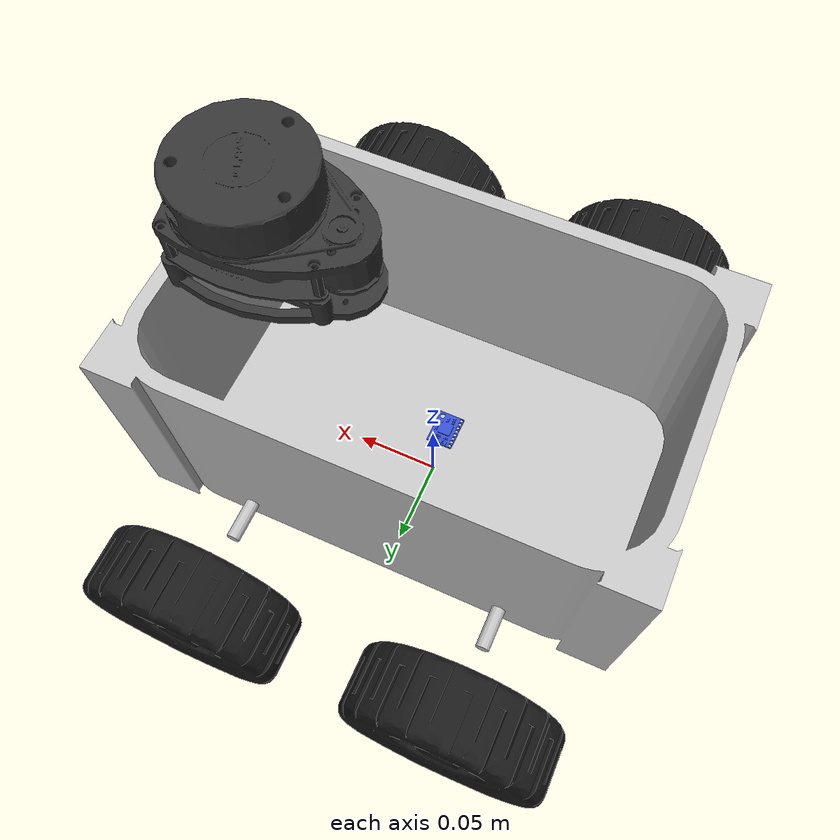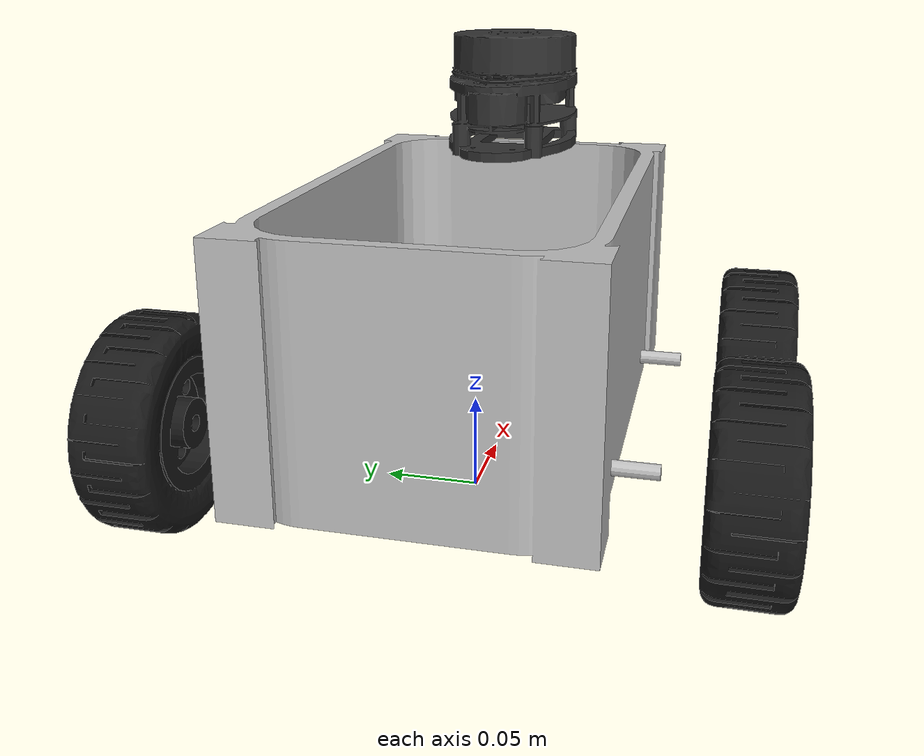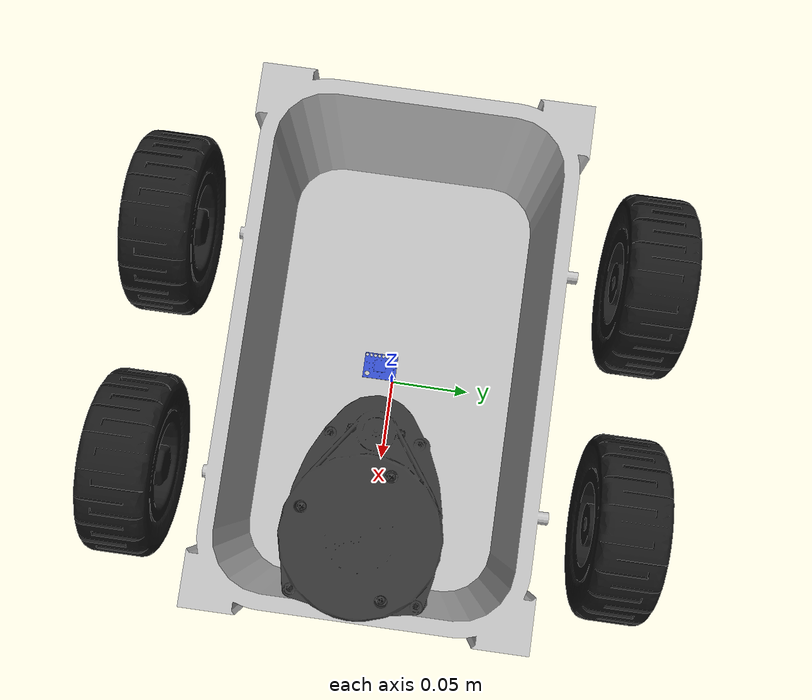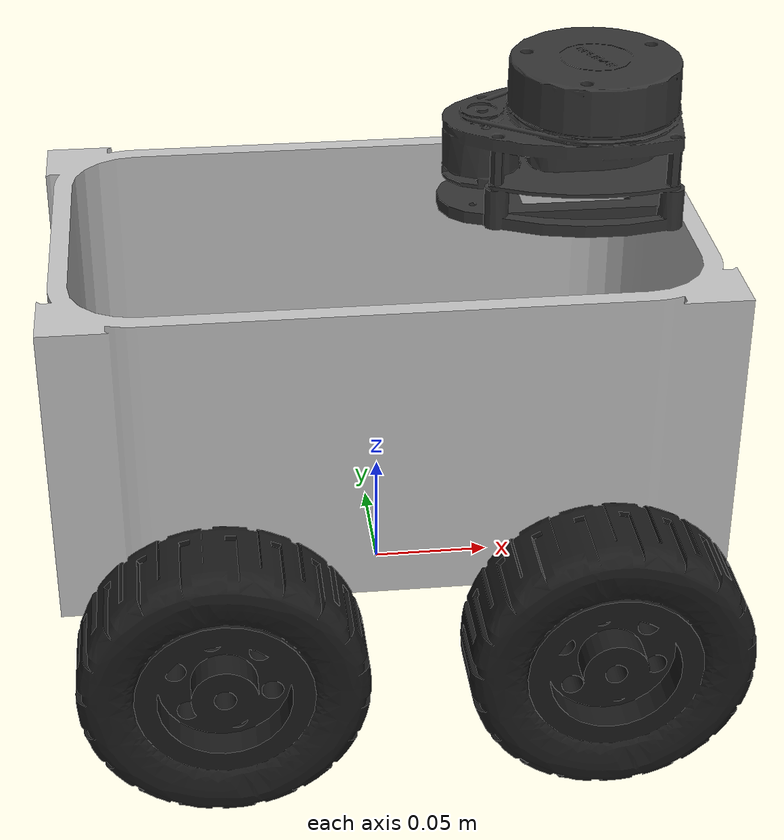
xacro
<?xml version="1.0"?>
<robot name="guide_dog_rover" xmlns:xacro="http://www.ros.org/wiki/xacro">

  <!-- Drivetrain                                                          -->
  <xacro:property name="wheel_radius"   value="0.055"/>   <!-- 110 mm wheel, measured -->
  <xacro:property name="wheel_width"    value="0.041"/>
  <xacro:property name="cad_wheel_radius" value="0.0598"/>  <!-- size of meshes/*_wheel.stl -->
  <xacro:property name="track_width"    value="0.290"/>   <!-- L wheel centre to R wheel centre: 240 + 2 x 25 extender -->
  <xacro:property name="wheelbase"      value="0.1473"/>  <!-- front axle to rear axle -->

  <!-- Chassis tub: outer bounding box, relative to base_link              -->
  <xacro:property name="chassis_length" value="0.2743"/>
  <xacro:property name="chassis_width"  value="0.2083"/>
  <xacro:property name="chassis_height" value="0.1296"/>
  <xacro:property name="chassis_bottom" value="-0.0153"/>  <!-- underside is 15 mm below the axles -->

  <!-- Sensors: pose relative to base_link (x forward, y left, z up)       -->

  <xacro:property name="laser_x"   value="0.08805"/>
  <xacro:property name="laser_y"   value="-0.0011"/>
  <xacro:property name="laser_z"   value="0.1730"/>
  <xacro:property name="laser_yaw" value="${pi}"/>

  <xacro:property name="imu_x"     value="-0.00455"/>
  <xacro:property name="imu_y"     value="-0.0080"/>
  <xacro:property name="imu_z"     value="-0.0097"/>
  <xacro:property name="imu_roll"  value="0.0"/>
  <xacro:property name="imu_pitch" value="0.0"/>
  <xacro:property name="imu_yaw"   value="${-pi/2}"/>

  <xacro:property name="camera_x"     value="0.13975"/>
  <xacro:property name="camera_y"     value="0.0"/>
  <xacro:property name="camera_z"     value="0.0469"/>
  <xacro:property name="camera_pitch" value="0.0"/>     <!-- positive = tilted DOWN -->

  <!-- Masses, only used by simulators. -->
  <xacro:property name="chassis_mass" value="2.0"/>
  <xacro:property name="wheel_mass"   value="0.15"/>

  <!-- Derived - do not edit                                               -->
  <xacro:property name="half_track" value="${track_width / 2}"/>
  <xacro:property name="half_base"  value="${wheelbase / 2}"/>
  <xacro:property name="mesh_dir"   value="package://rover_description/meshes"/>

  <!-- Materials                                                           -->
  <material name="grey">  <color rgba="0.75 0.75 0.75 1"/></material>
  <material name="black"> <color rgba="0.10 0.10 0.10 1"/></material>
  <material name="dark">  <color rgba="0.20 0.20 0.20 1"/></material>
  <material name="green"> <color rgba="0.10 0.45 0.20 1"/></material>
  <material name="blue">  <color rgba="0.20 0.30 0.80 1"/></material>

  <!-- Inertia helpers                                                     -->
  <xacro:macro name="box_inertia" params="m x y z *origin">
    <inertial>
      <xacro:insert_block name="origin"/>
      <mass value="${m}"/>
      <inertia ixx="${m*(y*y+z*z)/12}" ixy="0" ixz="0"
               iyy="${m*(x*x+z*z)/12}" iyz="0"
               izz="${m*(x*x+y*y)/12}"/>
    </inertial>
  </xacro:macro>

  <!-- Cylinder with its axis along the link's Y (how the wheels are built). -->
  <xacro:macro name="wheel_inertia" params="m r h">
    <inertial>
      <mass value="${m}"/>
      <inertia ixx="${m*(3*r*r+h*h)/12}" ixy="0" ixz="0"
               iyy="${m*r*r/2}"          iyz="0"
               izz="${m*(3*r*r+h*h)/12}"/>
    </inertial>
  </xacro:macro>

  <!-- Base                                                                -->
  <link name="base_footprint"/>

  <joint name="base_footprint_joint" type="fixed">
    <parent link="base_footprint"/>
    <child  link="base_link"/>
    <origin xyz="0 0 ${wheel_radius}" rpy="0 0 0"/>
  </joint>

  <link name="base_link"/>

  <!-- The chassis link shares base_link's origin so its mesh drops straight
       in; the collision box is offset to where the tub actually is. -->
  <joint name="chassis_joint" type="fixed">
    <parent link="base_link"/>
    <child  link="chassis"/>
    <origin xyz="0 0 0" rpy="0 0 0"/>
  </joint>

  <link name="chassis">
    <visual>
      <geometry><mesh filename="${mesh_dir}/chassis.stl"/></geometry>
      <material name="grey"/>
    </visual>
    <collision>
      <origin xyz="0 0 ${chassis_bottom + chassis_height / 2}" rpy="0 0 0"/>
      <geometry><box size="${chassis_length} ${chassis_width} ${chassis_height}"/></geometry>
    </collision>
    <xacro:box_inertia m="${chassis_mass}" x="${chassis_length}" y="${chassis_width}" z="${chassis_height}">
      <origin xyz="0 0 ${chassis_bottom + chassis_height / 2}" rpy="0 0 0"/>
    </xacro:box_inertia>
  </link>

  <!-- Wheels                                                              -->
  <!-- Skid-steer: both wheels on a side are driven together and share one  -->
  <!-- encoder, so kinematically this is a differential drive with         -->
  <!-- track_width as the separation. Four are modelled because four touch  -->
  <!-- the ground (footprint, collision, simulation).                      -->
  <xacro:macro name="wheel" params="prefix x y">
    <joint name="${prefix}_wheel_joint" type="continuous">
      <parent link="base_link"/>
      <child  link="${prefix}_wheel"/>
      <origin xyz="${x} ${y} 0" rpy="0 0 0"/>
      <axis xyz="0 1 0"/>
    </joint>

    <link name="${prefix}_wheel">
      <visual>
        <!-- Mesh axle is along Y: scale X and Z (the diameter), keep Y (the width). -->
        <geometry><mesh filename="${mesh_dir}/${prefix}_wheel.stl"
                        scale="${wheel_radius / cad_wheel_radius} 1 ${wheel_radius / cad_wheel_radius}"/></geometry>
        <material name="black"/>
      </visual>
      <collision>
        <origin xyz="0 0 0" rpy="${pi/2} 0 0"/>
        <geometry><cylinder radius="${wheel_radius}" length="${wheel_width}"/></geometry>
      </collision>
      <xacro:wheel_inertia m="${wheel_mass}" r="${wheel_radius}" h="${wheel_width}"/>
    </link>
  </xacro:macro>

  <xacro:wheel prefix="front_left"  x="${ half_base}" y="${ half_track}"/>
  <xacro:wheel prefix="front_right" x="${ half_base}" y="${-half_track}"/>
  <xacro:wheel prefix="rear_left"   x="${-half_base}" y="${ half_track}"/>
  <xacro:wheel prefix="rear_right"  x="${-half_base}" y="${-half_track}"/>

  <!-- LiDAR                                                               -->
  <joint name="laser_joint" type="fixed">
    <parent link="base_link"/>
    <child  link="laser"/>
    <origin xyz="${laser_x} ${laser_y} ${laser_z}" rpy="0 0 ${laser_yaw}"/>
  </joint>

  <link name="laser">
    <visual>
      <geometry><mesh filename="${mesh_dir}/lidar.stl"/></geometry>
      <material name="dark"/>
    </visual>
    <!-- Unit plus its mount: 62 mm tall, top 9 mm above the scan plane. -->
    <collision>
      <origin xyz="0 0 -0.0221" rpy="0 0 0"/>
      <geometry><cylinder radius="0.036" length="0.0626"/></geometry>
    </collision>
  </link>

  <!-- IMU                                                                 -->
  <joint name="imu_joint" type="fixed">
    <parent link="base_link"/>
    <child  link="imu_link"/>
    <origin xyz="${imu_x} ${imu_y} ${imu_z}" rpy="${imu_roll} ${imu_pitch} ${imu_yaw}"/>
  </joint>

  <link name="imu_link">
    <visual>
      <geometry><mesh filename="${mesh_dir}/imu.stl"/></geometry>
      <material name="blue"/>
    </visual>
  </link>

  <!-- Camera                                                              -->
  <joint name="camera_joint" type="fixed">
    <parent link="base_link"/>
    <child  link="camera_link"/>
    <origin xyz="${camera_x} ${camera_y} ${camera_z}" rpy="0 ${camera_pitch} 0"/>
  </joint>

  <link name="camera_link">
    <visual>
      <geometry><mesh filename="${mesh_dir}/camera.stl"/></geometry>
      <material name="green"/>
    </visual>
  </link>

  <!-- Image pipelines (OpenCV, image_proc, AprilTag, ...) expect the optical
       convention. Set the camera driver's frame_id to this one. -->
  <joint name="camera_optical_joint" type="fixed">
    <parent link="camera_link"/>
    <child  link="camera_link_optical"/>
    <origin xyz="0 0 0" rpy="${-pi/2} 0 ${-pi/2}"/>
  </joint>

  <link name="camera_link_optical"/>

</robot>
